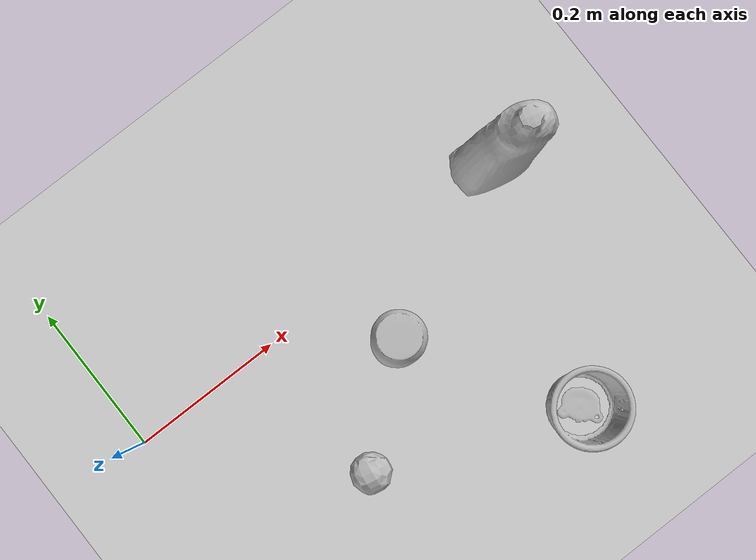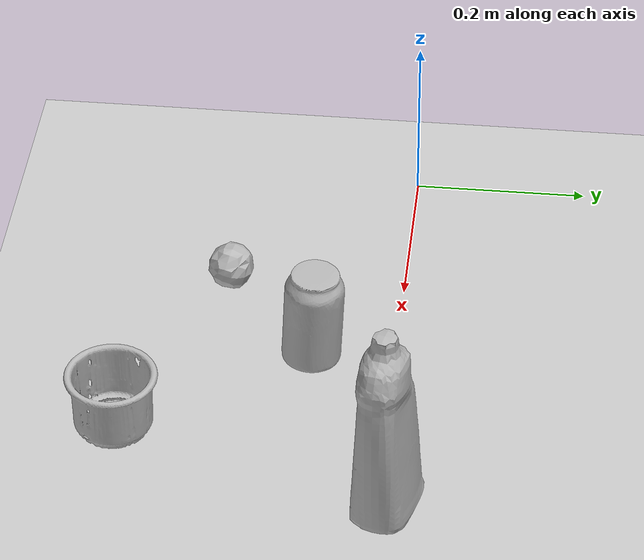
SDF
<sdf version="1.7">
 <world name="default">
  <model name="ground_plane">
   <static>1</static>
   <link name="link">
    <collision name="collision">
     <geometry><plane><normal>0 0 1</normal><size>100 100</size></plane></geometry>
     <surface>
      <contact><collide_bitmask>65535</collide_bitmask></contact>
      <friction><ode><mu>100</mu><mu2>50</mu2></ode></friction>
     </surface>
    </collision>
    <visual name="visual">
     <cast_shadows>0</cast_shadows>
     <geometry><plane><normal>0 0 1</normal><size>100 100</size></plane></geometry>
     <material>
      <script><uri>file://media/materials/scripts/gazebo.material</uri><name>Gazebo/Grey</name></script>
     </material>
    </visual>
   </link>
  </model>
  <gravity>0 0 -9.8</gravity>
  <magnetic_field>6e-06 2.3e-05 -4.2e-05</magnetic_field>
  <atmosphere type="adiabatic"/>
  <physics type="ode">
   <max_step_size>0.001</max_step_size>
   <real_time_factor>1</real_time_factor>
   <real_time_update_rate>1000</real_time_update_rate>
  </physics>
  <scene><ambient>0.4 0.4 0.4 1</ambient><background>0.7 0.7 0.7 1</background><shadows>1</shadows></scene>
  <spherical_coordinates>
   <surface_model>EARTH_WGS84</surface_model>
   <latitude_deg>0</latitude_deg>
   <longitude_deg>0</longitude_deg>
   <elevation>0</elevation>
   <heading_deg>0</heading_deg>
  </spherical_coordinates>
  <light name="user_point_light_0" type="point">
   <pose>2.3043 0.093688 1 0 -0 0</pose>
   <diffuse>0.5 0.5 0.5 1</diffuse>
   <specular>0.1 0.1 0.1 1</specular>
   <attenuation>
    <range>20</range>
    <constant>0.01</constant>
    <linear>0.01</linear>
    <quadratic>0.001</quadratic>
   </attenuation>
   <cast_shadows>0</cast_shadows>
   <direction>0 0 -1</direction>
   <spot><inner_angle>0</inner_angle><outer_angle>0</outer_angle><falloff>0</falloff></spot>
  </light>
  <model name="bleach_cleanser">
   <static>0</static>
   <link name="link">
    <inertial>
     <pose>-0.017139 0.011574 0.099698 -3.07106 0.000113 1.56037</pose>
     <mass>0.000972343</mass>
     <inertia>
      <ixx>4.56613e-06</ixx>
      <ixy>-1.26903e-22</ixy>
      <ixz>7.80825e-22</ixz>
      <iyy>4.25149e-06</iyy>
      <iyz>-1.59888e-22</iyz>
      <izz>7.65292e-07</izz>
     </inertia>
    </inertial>
    <collision name="collision">
     <geometry><mesh><uri>model://021_bleach_cleanser/google_16k/low_poly.obj</uri></mesh></geometry>
    </collision>
    <visual name="visual">
     <geometry><mesh><uri>model://021_bleach_cleanser/google_16k/textured.obj</uri></mesh></geometry>
     <material>
      <script><uri>model://021_bleach_cleanser/bleach_cleanser.material</uri><name>bleach_cleanser</name></script>
     </material>
    </visual>
   </link>
   <pose>0.575764 -0.004621 6.1e-05 -0.001516 0.001347 -0.240845</pose>
  </model>
  <model name="j_cups">
   <static>0</static>
   <link name="link">
    <inertial>
     <pose>-0.023169 -0.016288 0.03647 -0.449346 -1.52663 0.521609</pose>
     <mass>5.45863e-05</mass>
     <inertia>
      <ixx>9.38954e-08</ixx>
      <ixy>-2.16774e-23</ixy>
      <ixz>4.00586e-24</ixz>
      <iyy>8.1665e-08</iyy>
      <iyz>-4.93112e-24</iyz>
      <izz>8.06467e-08</izz>
     </inertia>
    </inertial>
    <collision name="collision">
     <geometry><mesh><uri>model://065-j_cups/google_16k/low_poly.obj</uri></mesh></geometry>
     <surface><friction><ode><mu>10000</mu><mu2>10000</mu2></ode></friction></surface>
    </collision>
    <visual name="visual">
     <geometry><mesh><uri>model://065-j_cups/google_16k/textured.obj</uri></mesh></geometry>
     <material><script><uri>model://065-j_cups/j_cups.material</uri><name>j_cups</name></script></material>
    </visual>
   </link>
   <pose>0.486348 -0.297664 0.000166 0.000748 -0.00053 -0.606162</pose>
  </model>
  <model name="racquetball">
   <static>0</static>
   <link name="link">
    <inertial>
     <pose>-0.009071 -0.122216 0.027571 1.00051 -1.14354 -2.47925</pose>
     <mass>9.10611e-05</mass>
     <inertia>
      <ixx>2.84472e-08</ixx>
      <ixy>5.50845e-25</ixy>
      <ixz>-2.29049e-24</ixz>
      <iyy>2.84272e-08</iyy>
      <iyz>-8.18493e-25</iyz>
      <izz>2.82441e-08</izz>
     </inertia>
    </inertial>
    <collision name="collision">
     <geometry><mesh><uri>model://057_racquetball/google_16k/low_poly.obj</uri></mesh></geometry>
     <surface>
      <friction><ode><mu>100000</mu><mu2>100000</mu2></ode></friction>
      <contact><ode><kp>1e+07</kp><kd>1</kd><max_vel>1000</max_vel><min_depth>0.001</min_depth></ode></contact>
     </surface>
    </collision>
    <visual name="visual">
     <geometry><mesh><uri>model://057_racquetball/google_16k/textured.obj</uri></mesh></geometry>
     <material>
      <script><uri>model://057_racquetball/racquetball.material</uri><name>racquetball</name></script>
     </material>
    </visual>
   </link>
   <pose>0.180626 -0.231471 -0.095633 -1.4708 -0.200641 -1.72986</pose>
  </model>
  <model name="coke_can">
   <link name="link">
    <inertial>
     <pose>0 0 0.06 0 -0 0</pose>
     <mass>0.39</mass>
     <inertia>
      <ixx>0.00055575</ixx>
      <ixy>0</ixy>
      <ixz>0</ixz>
      <iyy>0.00055575</iyy>
      <iyz>0</iyz>
      <izz>0.0001755</izz>
     </inertia>
    </inertial>
    <collision name="collision">
     <pose>0.003937 0.004724 -0.18 0 -0 0</pose>
     <geometry><mesh><uri>model://coke_can/meshes/coke_can.dae</uri></mesh></geometry>
     <surface>
      <friction><ode><mu>1</mu><mu2>1</mu2></ode></friction>
      <contact><ode><kp>1e+07</kp><kd>1</kd><min_depth>0.001</min_depth><max_vel>0.1</max_vel></ode></contact>
     </surface>
    </collision>
    <visual name="visual">
     <pose>0.003937 0.004724 -0.18 0 -0 0</pose>
     <geometry><mesh><uri>model://coke_can/meshes/coke_can.dae</uri></mesh></geometry>
    </visual>
   </link>
   <pose>0.32724 -0.093989 -0.003193 -0.052082 -0.005888 -0.000769</pose>
  </model>
 </world>
</sdf>
